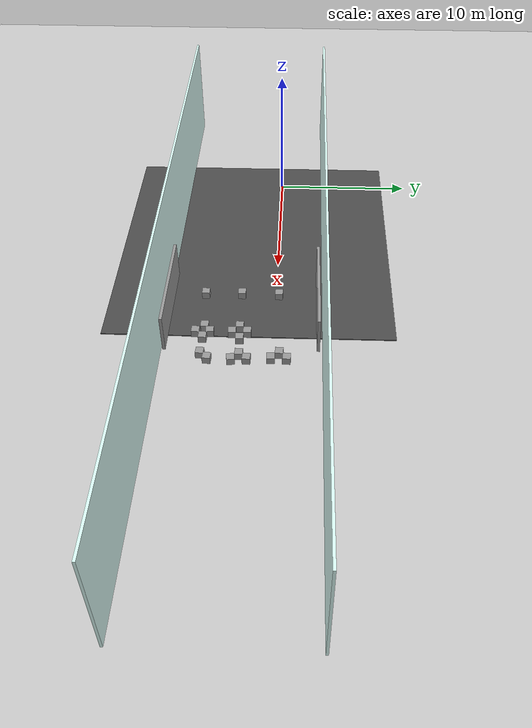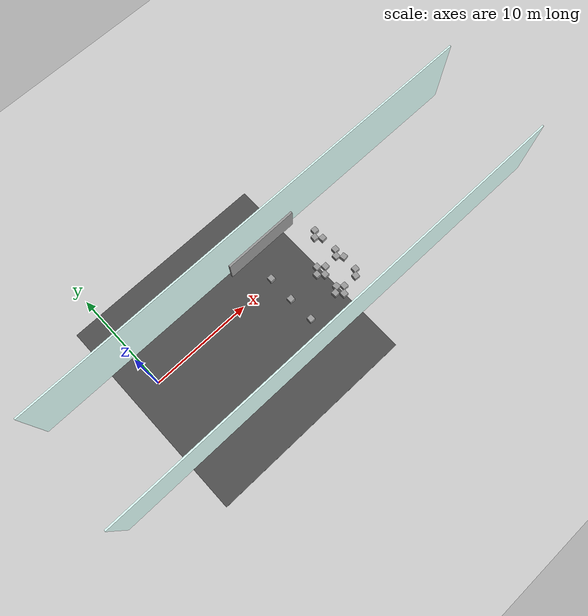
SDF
<sdf version="1.6">
 <world name="default">
  <model name="ground_plane">
   <static>1</static>
   <link name="link">
    <collision name="collision">
     <geometry><plane><normal>0 0 1</normal><size>100 100</size></plane></geometry>
     <surface>
      <contact><collide_bitmask>65535</collide_bitmask></contact>
      <friction><ode><mu>100</mu><mu2>50</mu2></ode></friction>
     </surface>
    </collision>
    <visual name="visual">
     <cast_shadows>0</cast_shadows>
     <geometry><plane><normal>0 0 1</normal><size>100 100</size></plane></geometry>
     <material>
      <script><uri>file://media/materials/scripts/gazebo.material</uri><name>Gazebo/Grey</name></script>
     </material>
    </visual>
   </link>
  </model>
  <model name="grey_wall">
   <static>1</static>
   <link name="link">
    <pose>0 0 1.4 0 -0 0</pose>
    <collision name="collision"><geometry><box><size>7.5 0.2 2.8</size></box></geometry></collision>
    <visual name="visual">
     <cast_shadows>0</cast_shadows>
     <geometry><box><size>7.5 0.2 2.8</size></box></geometry>
     <material>
      <script>
       <uri>model://grey_wall/materials/scripts</uri>
       <uri>model://grey_wall/materials/textures</uri>
       <name>vrc/grey_wall</name>
      </script>
     </material>
    </visual>
   </link>
   <pose>14.888 2.91481 0 0 -0 0.005635</pose>
  </model>
  <model name="grey_wall_clone">
   <static>1</static>
   <link name="link">
    <pose>0 0 1.4 0 -0 0</pose>
    <collision name="collision"><geometry><box><size>7.5 0.2 2.8</size></box></geometry></collision>
    <visual name="visual">
     <cast_shadows>0</cast_shadows>
     <geometry><box><size>7.5 0.2 2.8</size></box></geometry>
     <material>
      <script>
       <uri>model://grey_wall/materials/scripts</uri>
       <uri>model://grey_wall/materials/textures</uri>
       <name>vrc/grey_wall</name>
      </script>
     </material>
    </visual>
   </link>
   <pose>14.9849 -7.30049 0 0 -0 0</pose>
  </model>
  <model name="unit_box_0_clone_10">
   <pose>17.839 -4.81532 0.314113 0 0 -0.045272</pose>
   <link name="link">
    <inertial>
     <mass>1</mass>
     <inertia>
      <ixx>0.166667</ixx>
      <ixy>0</ixy>
      <ixz>0</ixz>
      <iyy>0.166667</iyy>
      <iyz>0</iyz>
      <izz>0.166667</izz>
     </inertia>
    </inertial>
    <collision name="collision">
     <geometry><box><size>0.530101 0.530101 0.530101</size></box></geometry>
    </collision>
    <visual name="visual">
     <geometry><box><size>0.530101 0.530101 0.530101</size></box></geometry>
     <material>
      <script><name>Gazebo/Grey</name><uri>file://media/materials/scripts/gazebo.material</uri></script>
     </material>
    </visual>
   </link>
  </model>
  <model name="unit_box_0_clone_11">
   <pose>16.7922 -4.75542 0.314113 0 -0 0.068769</pose>
   <link name="link">
    <inertial>
     <mass>1</mass>
     <inertia>
      <ixx>0.166667</ixx>
      <ixy>0</ixy>
      <ixz>0</ixz>
      <iyy>0.166667</iyy>
      <iyz>0</iyz>
      <izz>0.166667</izz>
     </inertia>
    </inertial>
    <collision name="collision">
     <geometry><box><size>0.530101 0.530101 0.530101</size></box></geometry>
    </collision>
    <visual name="visual">
     <geometry><box><size>0.530101 0.530101 0.530101</size></box></geometry>
     <material>
      <script><name>Gazebo/Grey</name><uri>file://media/materials/scripts/gazebo.material</uri></script>
     </material>
    </visual>
   </link>
  </model>
  <model name="unit_box_0_clone_12">
   <pose>17.3054 -4.3621 0.314111 -1.1e-05 6e-06 0.040973</pose>
   <link name="link">
    <inertial>
     <mass>1</mass>
     <inertia>
      <ixx>0.166667</ixx>
      <ixy>0</ixy>
      <ixz>0</ixz>
      <iyy>0.166667</iyy>
      <iyz>0</iyz>
      <izz>0.166667</izz>
     </inertia>
    </inertial>
    <collision name="collision">
     <geometry><box><size>0.530101 0.530101 0.530101</size></box></geometry>
    </collision>
    <visual name="visual">
     <geometry><box><size>0.530101 0.530101 0.530101</size></box></geometry>
     <material>
      <script><name>Gazebo/Grey</name><uri>file://media/materials/scripts/gazebo.material</uri></script>
     </material>
    </visual>
   </link>
  </model>
  <model name="unit_box_0_clone_13">
   <pose>17.3287 -5.32941 0.314113 0 0 -0.026623</pose>
   <link name="link">
    <inertial>
     <mass>1</mass>
     <inertia>
      <ixx>0.166667</ixx>
      <ixy>0</ixy>
      <ixz>0</ixz>
      <iyy>0.166667</iyy>
      <iyz>0</iyz>
      <izz>0.166667</izz>
     </inertia>
    </inertial>
    <collision name="collision">
     <geometry><box><size>0.530101 0.530101 0.530101</size></box></geometry>
    </collision>
    <visual name="visual">
     <geometry><box><size>0.530101 0.530101 0.530101</size></box></geometry>
     <material>
      <script><name>Gazebo/Grey</name><uri>file://media/materials/scripts/gazebo.material</uri></script>
     </material>
    </visual>
   </link>
  </model>
  <model name="unit_box_0_clone_18">
   <pose>19.1218 0.363804 0.314113 0 0 -0.050966</pose>
   <link name="link">
    <inertial>
     <mass>1</mass>
     <inertia>
      <ixx>0.166667</ixx>
      <ixy>0</ixy>
      <ixz>0</ixz>
      <iyy>0.166667</iyy>
      <iyz>0</iyz>
      <izz>0.166667</izz>
     </inertia>
    </inertial>
    <collision name="collision">
     <geometry><box><size>0.530101 0.530101 0.530101</size></box></geometry>
    </collision>
    <visual name="visual">
     <geometry><box><size>0.530101 0.530101 0.530101</size></box></geometry>
     <material>
      <script><name>Gazebo/Grey</name><uri>file://media/materials/scripts/gazebo.material</uri></script>
     </material>
    </visual>
   </link>
  </model>
  <model name="unit_box_0_clone_19">
   <pose>19.61 0.8688 0.314108 -7e-06 -1.1e-05 -0.055582</pose>
   <link name="link">
    <inertial>
     <mass>1</mass>
     <inertia>
      <ixx>0.166667</ixx>
      <ixy>0</ixy>
      <ixz>0</ixz>
      <iyy>0.166667</iyy>
      <iyz>0</iyz>
      <izz>0.166667</izz>
     </inertia>
    </inertial>
    <collision name="collision">
     <geometry><box><size>0.530101 0.530101 0.530101</size></box></geometry>
    </collision>
    <visual name="visual">
     <geometry><box><size>0.530101 0.530101 0.530101</size></box></geometry>
     <material>
      <script><name>Gazebo/Grey</name><uri>file://media/materials/scripts/gazebo.material</uri></script>
     </material>
    </visual>
   </link>
  </model>
  <model name="unit_box_0_clone_22">
   <pose>19.6936 -1.76089 0.314113 0 0 -0.043751</pose>
   <link name="link">
    <inertial>
     <mass>1</mass>
     <inertia>
      <ixx>0.166667</ixx>
      <ixy>0</ixy>
      <ixz>0</ixz>
      <iyy>0.166667</iyy>
      <iyz>0</iyz>
      <izz>0.166667</izz>
     </inertia>
    </inertial>
    <collision name="collision">
     <geometry><box><size>0.530101 0.530101 0.530101</size></box></geometry>
    </collision>
    <visual name="visual">
     <geometry><box><size>0.530101 0.530101 0.530101</size></box></geometry>
     <material>
      <script><name>Gazebo/Grey</name><uri>file://media/materials/scripts/gazebo.material</uri></script>
     </material>
    </visual>
   </link>
  </model>
  <model name="unit_box_0_clone_26">
   <pose>19.6965 -4.34869 0.314108 1e-05 7e-06 -0.080159</pose>
   <link name="link">
    <inertial>
     <mass>1</mass>
     <inertia>
      <ixx>0.166667</ixx>
      <ixy>0</ixy>
      <ixz>0</ixz>
      <iyy>0.166667</iyy>
      <iyz>0</iyz>
      <izz>0.166667</izz>
     </inertia>
    </inertial>
    <collision name="collision">
     <geometry><box><size>0.530101 0.530101 0.530101</size></box></geometry>
    </collision>
    <visual name="visual">
     <geometry><box><size>0.530101 0.530101 0.530101</size></box></geometry>
     <material>
      <script><name>Gazebo/Grey</name><uri>file://media/materials/scripts/gazebo.material</uri></script>
     </material>
    </visual>
   </link>
  </model>
  <model name="unit_box_0_clone_27">
   <pose>19.2516 -4.84569 0.314108 -7e-06 1.1e-05 -0.086107</pose>
   <link name="link">
    <inertial>
     <mass>1</mass>
     <inertia>
      <ixx>0.166667</ixx>
      <ixy>0</ixy>
      <ixz>0</ixz>
      <iyy>0.166667</iyy>
      <iyz>0</iyz>
      <izz>0.166667</izz>
     </inertia>
    </inertial>
    <collision name="collision">
     <geometry><box><size>0.530101 0.530101 0.530101</size></box></geometry>
    </collision>
    <visual name="visual">
     <geometry><box><size>0.530101 0.530101 0.530101</size></box></geometry>
     <material>
      <script><name>Gazebo/Grey</name><uri>file://media/materials/scripts/gazebo.material</uri></script>
     </material>
    </visual>
   </link>
  </model>
  <model name="unit_box_0_clone_22_clone">
   <pose>19.2929 -2.28116 0.314108 -7e-06 1.1e-05 -0.018124</pose>
   <link name="link">
    <inertial>
     <mass>1</mass>
     <inertia>
      <ixx>0.166667</ixx>
      <ixy>0</ixy>
      <ixz>0</ixz>
      <iyy>0.166667</iyy>
      <iyz>0</iyz>
      <izz>0.166667</izz>
     </inertia>
    </inertial>
    <collision name="collision">
     <geometry><box><size>0.530101 0.530101 0.530101</size></box></geometry>
    </collision>
    <visual name="visual">
     <geometry><box><size>0.530101 0.530101 0.530101</size></box></geometry>
     <material>
      <script><name>Gazebo/Grey</name><uri>file://media/materials/scripts/gazebo.material</uri></script>
     </material>
    </visual>
   </link>
  </model>
  <model name="unit_box_0_clone_22_clone_0">
   <pose>19.7566 -2.79248 0.314111 -1.1e-05 6e-06 0.14207</pose>
   <link name="link">
    <inertial>
     <mass>1</mass>
     <inertia>
      <ixx>0.166667</ixx>
      <ixy>0</ixy>
      <ixz>0</ixz>
      <iyy>0.166667</iyy>
      <iyz>0</iyz>
      <izz>0.166667</izz>
     </inertia>
    </inertial>
    <collision name="collision">
     <geometry><box><size>0.530101 0.530101 0.530101</size></box></geometry>
    </collision>
    <visual name="visual">
     <geometry><box><size>0.530101 0.530101 0.530101</size></box></geometry>
     <material>
      <script><name>Gazebo/Grey</name><uri>file://media/materials/scripts/gazebo.material</uri></script>
     </material>
    </visual>
   </link>
  </model>
  <model name="unit_box_0_clone_22_clone_6">
   <pose>17.3327 -2.86018 0.31411 1e-06 9e-06 0.017718</pose>
   <link name="link">
    <inertial>
     <mass>1</mass>
     <inertia>
      <ixx>0.166667</ixx>
      <ixy>0</ixy>
      <ixz>0</ixz>
      <iyy>0.166667</iyy>
      <iyz>0</iyz>
      <izz>0.166667</izz>
     </inertia>
    </inertial>
    <collision name="collision">
     <geometry><box><size>0.530101 0.530101 0.530101</size></box></geometry>
    </collision>
    <visual name="visual">
     <geometry><box><size>0.530101 0.530101 0.530101</size></box></geometry>
     <material>
      <script><name>Gazebo/Grey</name><uri>file://media/materials/scripts/gazebo.material</uri></script>
     </material>
    </visual>
   </link>
  </model>
  <model name="unit_box_0_clone_22_clone_7">
   <pose>16.7976 -2.37051 0.314113 0 -0 0.001203</pose>
   <link name="link">
    <inertial>
     <mass>1</mass>
     <inertia>
      <ixx>0.166667</ixx>
      <ixy>0</ixy>
      <ixz>0</ixz>
      <iyy>0.166667</iyy>
      <iyz>0</iyz>
      <izz>0.166667</izz>
     </inertia>
    </inertial>
    <collision name="collision">
     <geometry><box><size>0.530101 0.530101 0.530101</size></box></geometry>
    </collision>
    <visual name="visual">
     <geometry><box><size>0.530101 0.530101 0.530101</size></box></geometry>
     <material>
      <script><name>Gazebo/Grey</name><uri>file://media/materials/scripts/gazebo.material</uri></script>
     </material>
    </visual>
   </link>
  </model>
  <model name="unit_box_0_clone_22_clone_8">
   <pose>17.2949 -1.84032 0.314113 2e-06 0 -0.001706</pose>
   <link name="link">
    <inertial>
     <mass>1</mass>
     <inertia>
      <ixx>0.166667</ixx>
      <ixy>0</ixy>
      <ixz>0</ixz>
      <iyy>0.166667</iyy>
      <iyz>0</iyz>
      <izz>0.166667</izz>
     </inertia>
    </inertial>
    <collision name="collision">
     <geometry><box><size>0.530101 0.530101 0.530101</size></box></geometry>
    </collision>
    <visual name="visual">
     <geometry><box><size>0.530101 0.530101 0.530101</size></box></geometry>
     <material>
      <script><name>Gazebo/Grey</name><uri>file://media/materials/scripts/gazebo.material</uri></script>
     </material>
    </visual>
   </link>
  </model>
  <model name="unit_box_0_clone_22_clone_9">
   <pose>17.8893 -2.32768 0.314113 0 -0 0.018957</pose>
   <link name="link">
    <inertial>
     <mass>1</mass>
     <inertia>
      <ixx>0.166667</ixx>
      <ixy>0</ixy>
      <ixz>0</ixz>
      <iyy>0.166667</iyy>
      <iyz>0</iyz>
      <izz>0.166667</izz>
     </inertia>
    </inertial>
    <collision name="collision">
     <geometry><box><size>0.530101 0.530101 0.530101</size></box></geometry>
    </collision>
    <visual name="visual">
     <geometry><box><size>0.530101 0.530101 0.530101</size></box></geometry>
     <material>
      <script><name>Gazebo/Grey</name><uri>file://media/materials/scripts/gazebo.material</uri></script>
     </material>
    </visual>
   </link>
  </model>
  <model name="unit_box_0_clone_22_clone_10">
   <pose>19.6115 -0.169336 0.314108 -1.1e-05 7e-06 0.043593</pose>
   <link name="link">
    <inertial>
     <mass>1</mass>
     <inertia>
      <ixx>0.166667</ixx>
      <ixy>0</ixy>
      <ixz>0</ixz>
      <iyy>0.166667</iyy>
      <iyz>0</iyz>
      <izz>0.166667</izz>
     </inertia>
    </inertial>
    <collision name="collision">
     <geometry><box><size>0.530101 0.530101 0.530101</size></box></geometry>
    </collision>
    <visual name="visual">
     <geometry><box><size>0.530101 0.530101 0.530101</size></box></geometry>
     <material>
      <script><name>Gazebo/Grey</name><uri>file://media/materials/scripts/gazebo.material</uri></script>
     </material>
    </visual>
   </link>
  </model>
  <model name="unit_box_0_clone_22_clone_16">
   <pose>13.5333 0.181025 0.314111 -8e-06 -0 -0.027298</pose>
   <link name="link">
    <inertial>
     <mass>1</mass>
     <inertia>
      <ixx>0.166667</ixx>
      <ixy>0</ixy>
      <ixz>0</ixz>
      <iyy>0.166667</iyy>
      <iyz>0</iyz>
      <izz>0.166667</izz>
     </inertia>
    </inertial>
    <collision name="collision">
     <geometry><box><size>0.530101 0.530101 0.530101</size></box></geometry>
    </collision>
    <visual name="visual">
     <geometry><box><size>0.530101 0.530101 0.530101</size></box></geometry>
     <material>
      <script><name>Gazebo/Grey</name><uri>file://media/materials/scripts/gazebo.material</uri></script>
     </material>
    </visual>
   </link>
  </model>
  <model name="unit_box_0_clone_22_clone_21">
   <pose>13.5107 -2.43042 0.31411 -9e-06 0 -0.010315</pose>
   <link name="link">
    <inertial>
     <mass>1</mass>
     <inertia>
      <ixx>0.166667</ixx>
      <ixy>0</ixy>
      <ixz>0</ixz>
      <iyy>0.166667</iyy>
      <iyz>0</iyz>
      <izz>0.166667</izz>
     </inertia>
    </inertial>
    <collision name="collision">
     <geometry><box><size>0.530101 0.530101 0.530101</size></box></geometry>
    </collision>
    <visual name="visual">
     <geometry><box><size>0.530101 0.530101 0.530101</size></box></geometry>
     <material>
      <script><name>Gazebo/Grey</name><uri>file://media/materials/scripts/gazebo.material</uri></script>
     </material>
    </visual>
   </link>
  </model>
  <model name="unit_box_0_clone_22_clone_23">
   <pose>13.5574 -4.98043 0.314113 0 0 -0.016194</pose>
   <link name="link">
    <inertial>
     <mass>1</mass>
     <inertia>
      <ixx>0.166667</ixx>
      <ixy>0</ixy>
      <ixz>0</ixz>
      <iyy>0.166667</iyy>
      <iyz>0</iyz>
      <izz>0.166667</izz>
     </inertia>
    </inertial>
    <collision name="collision">
     <geometry><box><size>0.530101 0.530101 0.530101</size></box></geometry>
    </collision>
    <visual name="visual">
     <geometry><box><size>0.530101 0.530101 0.530101</size></box></geometry>
     <material>
      <script><name>Gazebo/Grey</name><uri>file://media/materials/scripts/gazebo.material</uri></script>
     </material>
    </visual>
   </link>
  </model>
  <model name="world_frame">
   <link name="Wall_210">
    <pose>-0.024075 -5.42699 0 0 -0 0</pose>
    <visual name="Wall_210_Visual">
     <pose>0 0 4 0 -0 0</pose>
     <geometry><box><size>47.75 0.15 8</size></box></geometry>
     <material>
      <script><uri>file://media/materials/scripts/gazebo.material</uri><name>Gazebo/Grey</name></script>
      <ambient>0.866667 1 0.972549 1</ambient>
      <shader type="pixel"/>
      <diffuse>0.7 0.7 0.7 1</diffuse>
      <specular>0.01 0.01 0.01 1</specular>
      <emissive>0 0 0 1</emissive>
     </material>
     <meta><layer>0</layer></meta>
    </visual>
    <collision name="Wall_210_Collision">
     <pose>0 0 4 0 -0 0</pose>
     <geometry><box><size>47.75 0.15 8</size></box></geometry>
     <surface>
      <friction>
       <ode><mu>1</mu><mu2>1</mu2><fdir1>0 0 0</fdir1><slip1>0</slip1><slip2>0</slip2></ode>
       <torsional>
        <coefficient>1</coefficient>
        <patch_radius>0</patch_radius>
        <surface_radius>0</surface_radius>
        <use_patch_radius>1</use_patch_radius>
        <ode><slip>0</slip></ode>
       </torsional>
      </friction>
      <bounce><restitution_coefficient>0</restitution_coefficient><threshold>1e+06</threshold></bounce>
      <contact>
       <collide_without_contact>0</collide_without_contact>
       <collide_without_contact_bitmask>1</collide_without_contact_bitmask>
       <collide_bitmask>1</collide_bitmask>
       <ode>
        <soft_cfm>0</soft_cfm>
        <soft_erp>0.2</soft_erp>
        <kp>1e+13</kp>
        <kd>1</kd>
        <max_vel>0.01</max_vel>
        <min_depth>0</min_depth>
       </ode>
       <bullet>
        <split_impulse>1</split_impulse>
        <split_impulse_penetration_threshold>-0.01</split_impulse_penetration_threshold>
        <soft_cfm>0</soft_cfm>
        <soft_erp>0.2</soft_erp>
        <kp>1e+13</kp>
        <kd>1</kd>
       </bullet>
      </contact>
     </surface>
    </collision>
   </link>
   <link name="Wall_212">
    <pose>0.02036 5.425 0 0 -0 3.14159</pose>
    <visual name="Wall_212_Visual">
     <pose>0 0 4 0 -0 0</pose>
     <geometry><box><size>47.75 0.15 8</size></box></geometry>
     <material>
      <script><uri>file://media/materials/scripts/gazebo.material</uri><name>Gazebo/Grey</name></script>
      <ambient>0.866667 1 0.972549 1</ambient>
      <shader type="pixel"/>
      <diffuse>0.7 0.7 0.7 1</diffuse>
      <specular>0.01 0.01 0.01 1</specular>
      <emissive>0 0 0 1</emissive>
     </material>
     <meta><layer>0</layer></meta>
    </visual>
    <collision name="Wall_212_Collision">
     <pose>0 0 4 0 -0 0</pose>
     <geometry><box><size>47.75 0.15 8</size></box></geometry>
     <surface>
      <friction>
       <ode><mu>1</mu><mu2>1</mu2><fdir1>0 0 0</fdir1><slip1>0</slip1><slip2>0</slip2></ode>
       <torsional>
        <coefficient>1</coefficient>
        <patch_radius>0</patch_radius>
        <surface_radius>0</surface_radius>
        <use_patch_radius>1</use_patch_radius>
        <ode><slip>0</slip></ode>
       </torsional>
      </friction>
      <bounce><restitution_coefficient>0</restitution_coefficient><threshold>1e+06</threshold></bounce>
      <contact>
       <collide_without_contact>0</collide_without_contact>
       <collide_without_contact_bitmask>1</collide_without_contact_bitmask>
       <collide_bitmask>1</collide_bitmask>
       <ode>
        <soft_cfm>0</soft_cfm>
        <soft_erp>0.2</soft_erp>
        <kp>1e+13</kp>
        <kd>1</kd>
        <max_vel>0.01</max_vel>
        <min_depth>0</min_depth>
       </ode>
       <bullet>
        <split_impulse>1</split_impulse>
        <split_impulse_penetration_threshold>-0.01</split_impulse_penetration_threshold>
        <soft_cfm>0</soft_cfm>
        <soft_erp>0.2</soft_erp>
        <kp>1e+13</kp>
        <kd>1</kd>
       </bullet>
      </contact>
     </surface>
    </collision>
   </link>
   <static>1</static>
   <pose>14.3624 -2.13506 0 0 -0 0</pose>
  </model>
  <model name="asphalt_plane">
   <static>1</static>
   <link name="link">
    <collision name="collision"><geometry><box><size>20 20 0.1</size></box></geometry></collision>
    <visual name="visual">
     <cast_shadows>0</cast_shadows>
     <geometry><box><size>20 20 0.1</size></box></geometry>
     <material>
      <script>
       <uri>model://asphalt_plane/materials/scripts</uri>
       <uri>model://asphalt_plane/materials/textures</uri>
       <name>vrc/asphalt</name>
      </script>
     </material>
    </visual>
   </link>
   <pose>7.45828 -1.78814 -0.021157 0 -0 0</pose>
  </model>
 </world>
</sdf>
